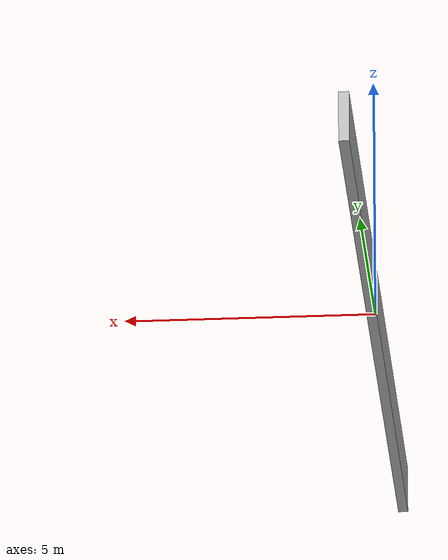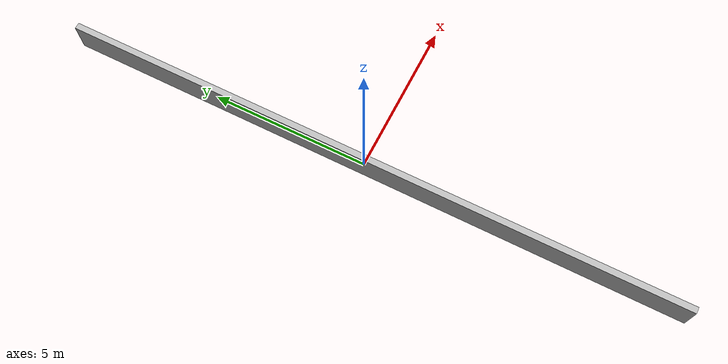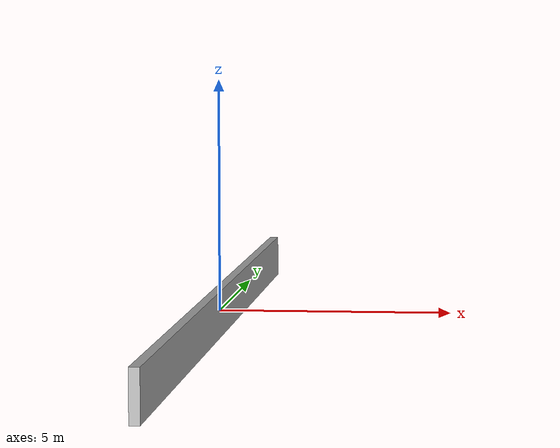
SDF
<?xml version='1.0'?>
<sdf version='1.6'>
  <model name='outer_right'>
    <static>true</static>
    <link name='link'>
      <collision name='collision'>
        <pose>0 0 0 0 0 0</pose>
        <geometry>
          <box>
            <size>0.2 20.0 1.0</size>
          </box>
        </geometry>
      </collision>
      <visual name='visual'>
        <pose>0 0 0 0 0 0</pose>
        <geometry>
          <box>
            <size>0.2 20.0 1.0</size>
          </box>
        </geometry>
      </visual>
    </link>
  </model>
</sdf>
